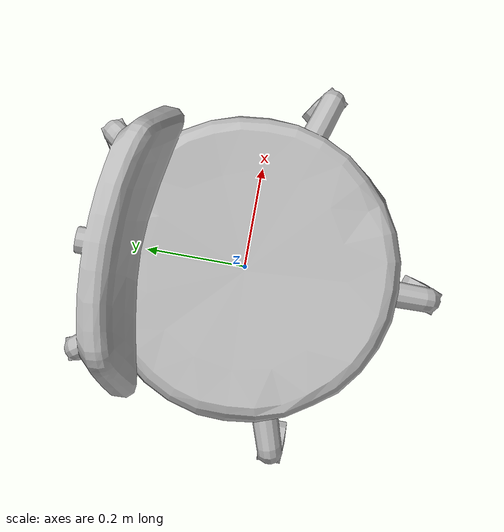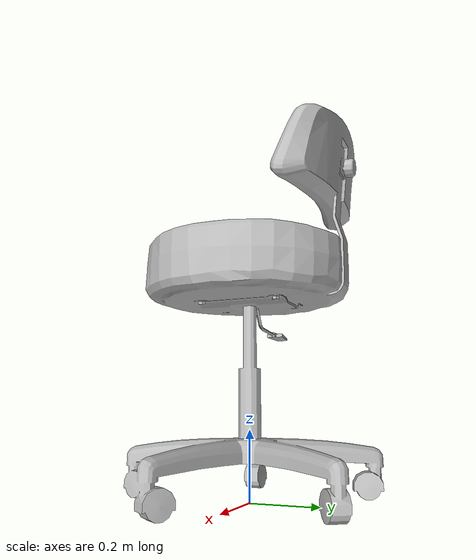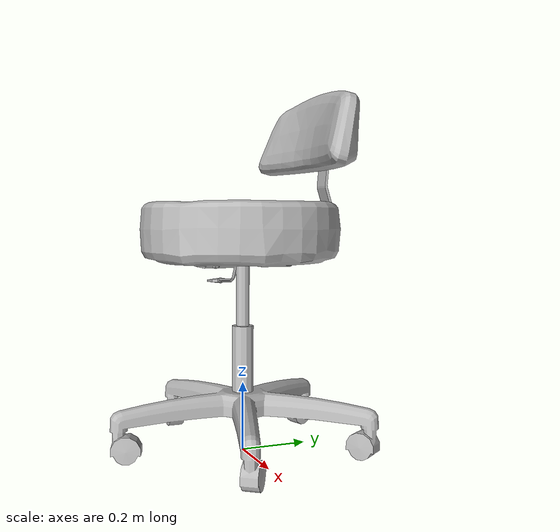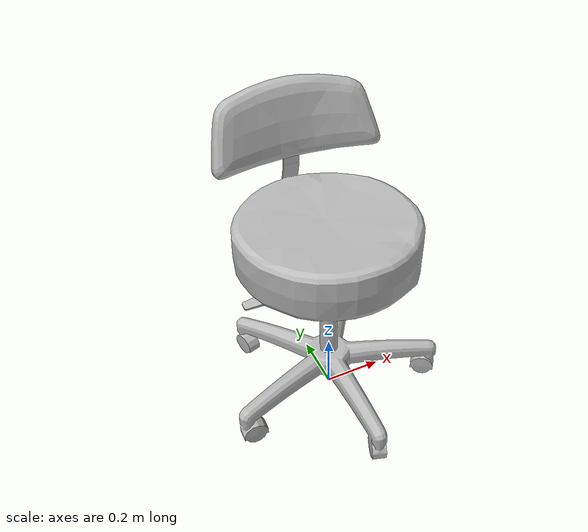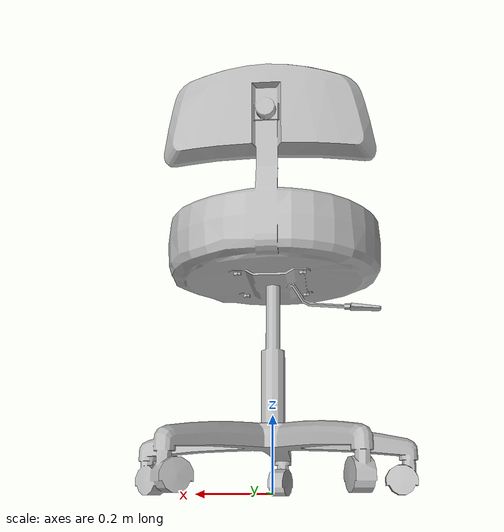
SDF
<?xml version="1.0" ?>
<sdf version="1.7">
  <model name="SM_Chair_01a">
    <static>true</static>
    <link name="link">
      <visual name="visual">
        <geometry>
          <mesh>
            <uri>SM_Chair_01a.dae</uri>
          </mesh>
        </geometry>
      </visual>
    </link>
  </model>
</sdf>
